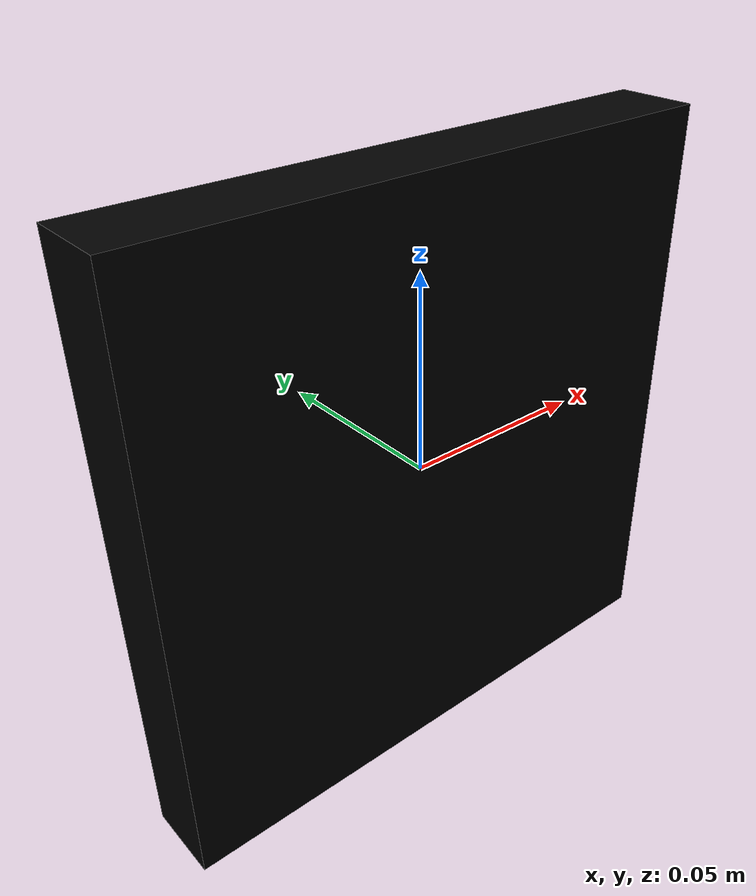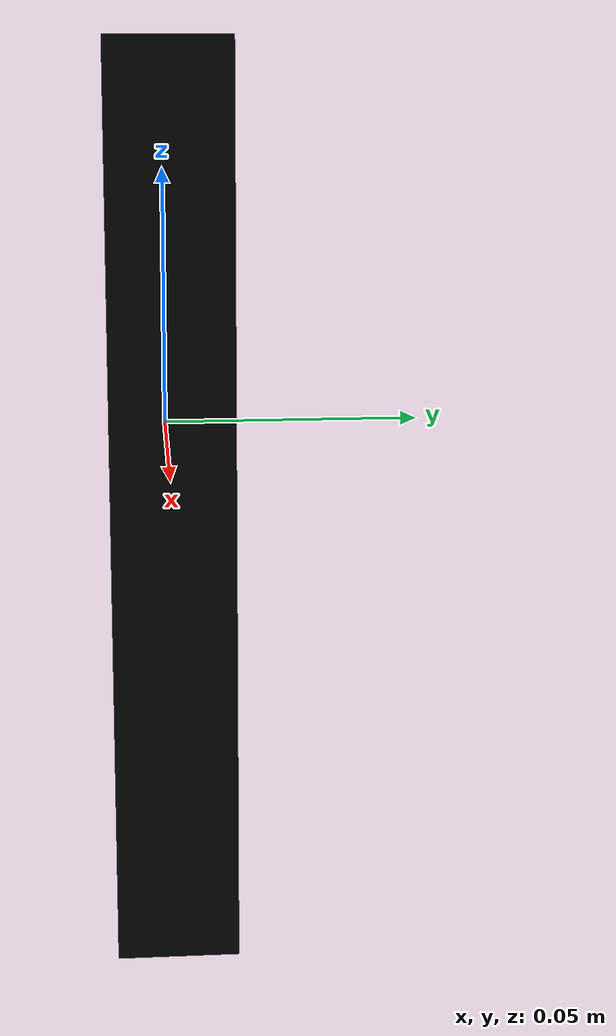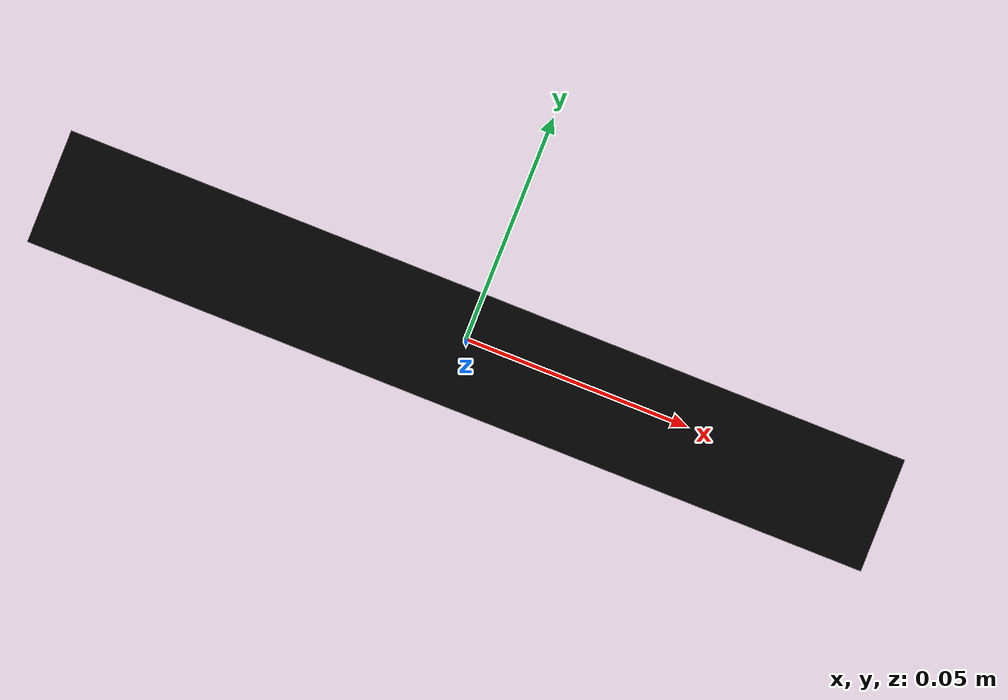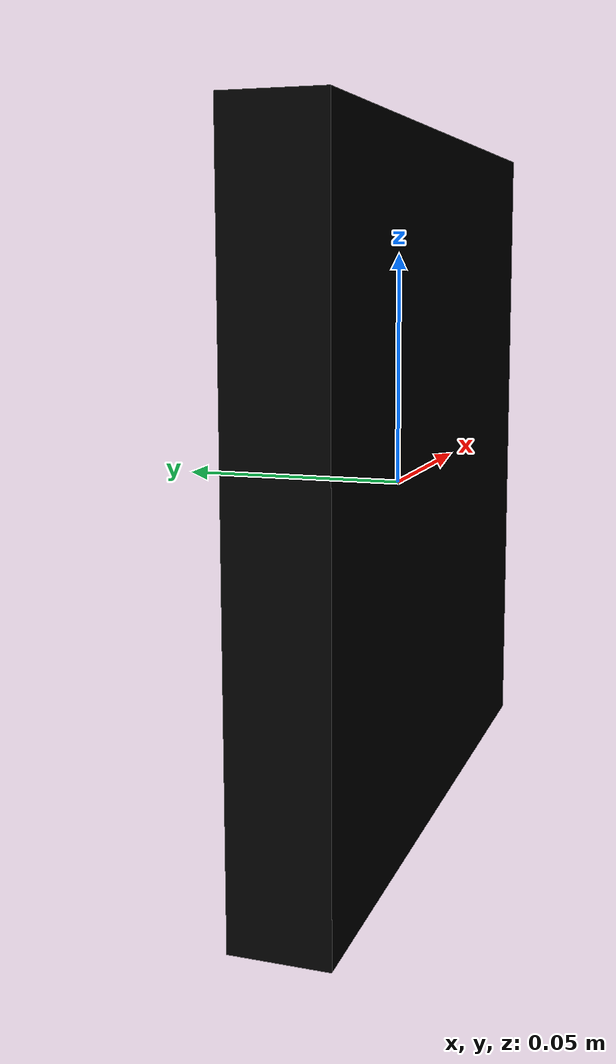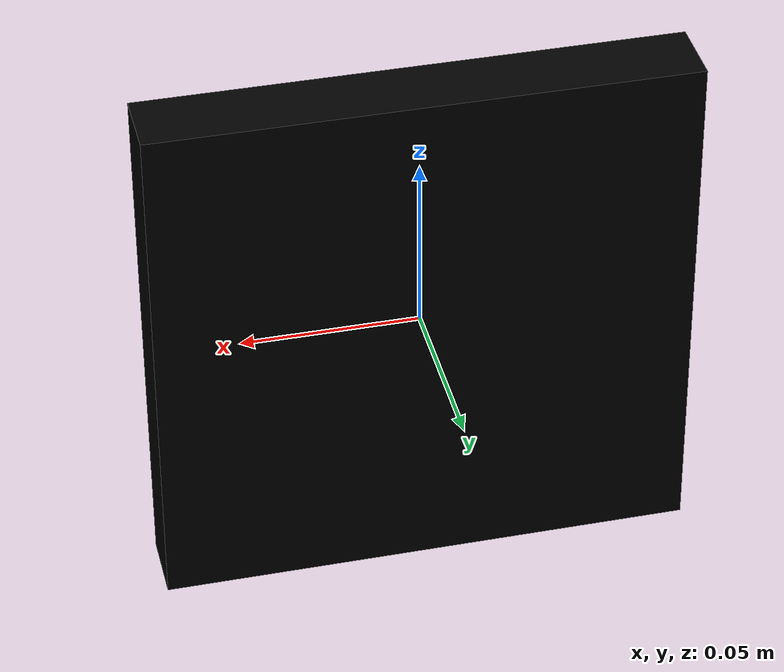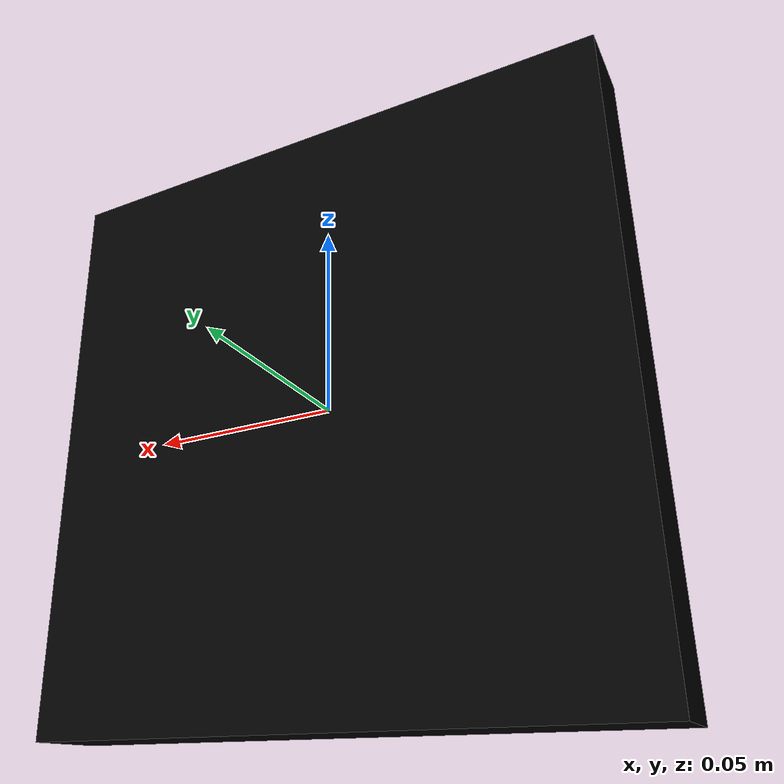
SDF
<?xml version="1.0"?>
<sdf version="1.4">
  <model name="heat_plate_0.15x0.15_e1.0">
    <pose>0 0 0 0 0 0</pose>
    <static>true</static>
    <link name="heat_plate_0.15x0.15_e1.0_link">
      <visual name="heat_plate_0.15x0.15_e1.0_visual">
        <geometry>
          <box>
            <size>0.15 0.02 0.15</size>
          </box>
        </geometry>
        <material>
          <ambient>0 0 0 1</ambient>
          <diffuse>0 0 0 1</diffuse>
          <specular>0 0 0 0</specular>
          <emissive>1 0 0 1</emissive>
        </material>
      </visual>
    </link>
  </model>
</sdf>
